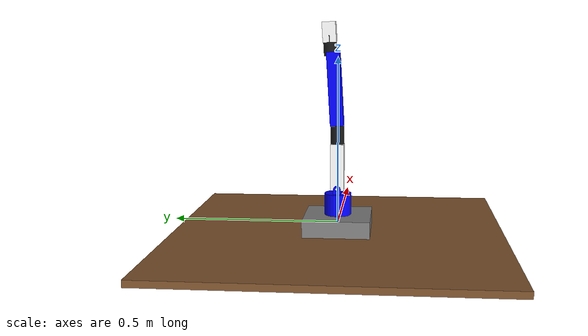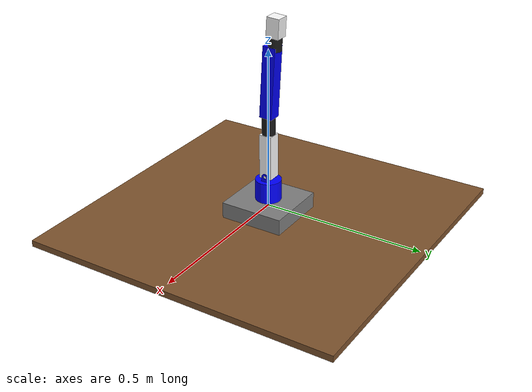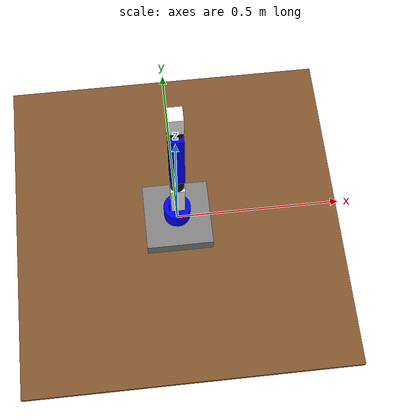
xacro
<?xml version="1.0"?>

<robot name="six_dof_arm" xmlns:xacro="http://www.ros.org/wiki/xacro">
<xacro:include filename="$(find six_dof_arm_description)/urdf/common_config.urdf.xacro"/>
<xacro:include filename="$(find six_dof_arm_description)/urdf/common_properties.urdf.xacro"/>
<xacro:include filename="$(find six_dof_arm_description)/urdf/six_dof_arm_gazebo.urdf.xacro"/>
<xacro:include filename="$(find six_dof_arm_description)/urdf/six_dof_arm_transmission.urdf.xacro"/>

<!-- BOTTOM FIXED LINK
This link is the base of the arm in which arm is placed -->

  <joint name="bottom_joint" type="fixed">
    <origin xyz="0 0 0" rpy="0 0 0" />
    <parent link="base_link"/>
    <child link="bottom_link"/>
  </joint>

  <link name="bottom_link">
    <visual>
      <origin xyz=" 0 0 -0.04"  rpy="0 0 0"/>
      <geometry>
        <box size="1 1 0.02" />
      </geometry>
      <material name="Brown" />
    </visual>

    <collision>
      <origin xyz=" 0 0 -0.04"  rpy="0 0 0"/>
      <geometry>
        <box size="1 1 0.02" />
      </geometry>
      </collision>>
  </link>

  <!-- BASE LINK -->
  <link name="base_link">

    <visual>
      <!-- rotate PI/2 -->
      <origin xyz="0 0 0" rpy="${M_PI/2} 0 0" />
      <geometry>
        <box size="0.2 0.05 0.2" />
      </geometry>
      <xacro:insert_block name="material_grey" />
    </visual>

    <collision>
      <!-- rotate PI/2 -->
      <origin xyz="0 0 0" rpy="${M_PI/2} 0 0" />
      <geometry>
        <box size="0.1 0.1 0.1" />
      </geometry>
      </collision>>
    <xacro:inertial_matrix mass="1"/>

  </link>

  <joint name="shoulder_pan_joint" type="revolute">
    <parent link="base_link"/>
    <child link="shoulder_pan_link"/>
    <origin xyz="0 0 0.05" rpy="0 ${M_PI/2} ${M_PI*0}" />
    <axis xyz="-1 0 0" />
    <limit effort="300" velocity="1" lower="-2.61799387799" upper="1.98394848567"/>
    <dynamics damping="50" friction="1"/>
  </joint>

  <!-- SHOULDER PAN LINK -->
  <link name="shoulder_pan_link" >

    <visual>
      <origin xyz="0 0 0" rpy="0 ${M_PI/2} 0" />
      <geometry>
        <cylinder radius="${shoulder_pan_width}" length="${shoulder_pan_len}"/>
      </geometry>
      <xacro:insert_block name="material_blue" />
    </visual>

    <collision>
      <origin xyz="0 0 0" rpy="0 ${M_PI/2} 0" />
      <geometry>
        <cylinder radius="${shoulder_pan_width}" length="${shoulder_pan_len}"/>
      </geometry>
    </collision>
    <xacro:inertial_matrix mass="1"/>
  </link>

  <joint name="shoulder_pitch_joint" type="fixed">
    <parent link="shoulder_pan_link"/>
    <child link="shoulder_pitch_mount_link"/>
    <origin xyz="${-shoulder_pan_len/3*2} 0.0021 0.0" rpy="-${M_PI} 0 0" />
  </joint>

  <link name="shoulder_pitch_mount_link">
    <visual>
      <origin xyz="0 0 0" rpy="-${M_PI/2} 0 0"/>
      <geometry>
        <mesh filename="package://six_dof_arm_description/meshes/wrist.stl"/>
      </geometry>
      <xacro:insert_block name="material_blue" />
    </visual>
    <collision>
      <origin xyz="0 0 0" rpy="-${M_PI/2} 0 0" />
      <geometry>
        <mesh filename="package://six_dof_arm_description/meshes/wrist.stl"/>
      </geometry>
    </collision>
    <xacro:inertial_matrix mass="1"/>
  </link>

  <joint name="shoulder_pitch_mount_joint" type="revolute">
    <parent link="shoulder_pitch_mount_link"/>
    <child link="shoulder_pitch_link"/>
    <origin xyz="-${shoulder_pan_len/3} 0.0 0.0" rpy="0 -${M_PI/2} 0 " />
    <axis xyz="1 0 0" />
    <limit effort="300" velocity="1" lower="-1.19962513147" upper="1.89994105047" />
    <dynamics damping="50" friction="1"/>
  </joint>

  <!-- SHOULDER PITCH LINK -->
  <link name="shoulder_pitch_link" >

    <visual>
      <origin xyz="-0.002 0 0.04" rpy="0 ${M_PI/2} 0" />
      <geometry>
        <box size="${shoulder_pitch_len} ${shoulder_pitch_width} ${shoulder_pitch_height}" />
      </geometry>
      <xacro:insert_block name="material_white" />
    </visual>

    <collision>
      <origin xyz="-0.002 0 0.04" rpy="0 ${M_PI/2} 0" />
      <geometry>
        <box size="${shoulder_pitch_len} ${shoulder_pitch_width} ${shoulder_pitch_height}" />
      </geometry>
    </collision>
    <xacro:inertial_matrix mass="1"/>
  </link>

  <joint name="elbow_roll_joint" type="revolute">
    <parent link="shoulder_pitch_link"/>
    <child link="elbow_roll_link"/>
    <origin xyz="-0.002 0 0.1206" rpy="${M_PI} ${M_PI/2} 0" />
    <axis xyz="-1 0 0" />
    <limit effort="300" velocity="1" lower="-2.61799387799" upper="0.705631162427" />
    <dynamics damping="50" friction="1"/>
  </joint>

  <!-- ELBOW ROLL LINK -->
  <link name="elbow_roll_link" >

    <visual>
      <origin xyz="-0.015 0.0 -0.0" rpy="0 ${M_PI/2} 0" />
      <geometry>
        <cylinder radius="${elbow_roll_width}" length="${elbow_roll_len}"/>
      </geometry>
      <xacro:insert_block name="material_black" />
    </visual>

    <collision>
      <origin xyz="-0.015 0.0 -0.0" rpy="0 ${M_PI/2} 0" />
      <geometry>
        <cylinder radius="${elbow_roll_width}" length="${elbow_roll_len}"/>
      </geometry>
    </collision>
    <xacro:inertial_matrix mass="1"/>
  </link>

  <joint name="elbow_pitch_joint" type="revolute">
    <parent link="elbow_roll_link"/>
    <child link="elbow_pitch_link"/>
    <origin xyz="-0.035 0 0.0" rpy="0.055 ${M_PI/2} 0" />
    <axis xyz="1 0 0" />
    <limit effort="300" velocity="1" lower="-1.5953400194" upper="1.93281579274" />
    <dynamics damping="50" friction="1"/>
  </joint>

  <!-- ELBOW PITCH LINK -->
  <link name="elbow_pitch_link" >

    <visual>
      <origin xyz="0 0 -0.12" rpy="0 ${M_PI/2} 0" />
      <geometry>
        <box size="${elbow_pitch_len} ${elbow_pitch_width} ${elbow_pitch_height}" />
      </geometry>
      <xacro:insert_block name="material_blue" />
    </visual>

    <collision>
      <origin xyz="0 0 -0.12" rpy="0 ${M_PI/2} 0" />
      <geometry>
       <box size="${elbow_pitch_len} ${elbow_pitch_width} ${elbow_pitch_height}" />
      </geometry>
    </collision>
    <xacro:inertial_matrix mass="1"/>
  </link>

  <joint name="wrist_roll_joint" type="revolute">
    <parent link="elbow_pitch_link"/>
    <child link="wrist_roll_link"/>
    <origin xyz="0.0 0.0081 -.248" rpy="0 ${M_PI/2} ${M_PI}" />
    <axis xyz="1 0 0" />
    <limit effort="300" velocity="1" lower="-2.61799387799" upper="2.6128806087" />
    <dynamics damping="50" friction="1"/>
  </joint>

  <!-- WRIST ROLL LINK -->
  <link name="wrist_roll_link" >
    <visual>
      <origin xyz="0 0 0" rpy="0 ${M_PI/2} 0" />
      <geometry>
        <cylinder radius="${elbow_roll_width}" length="${elbow_roll_len}"/>
      </geometry>
      <xacro:insert_block name="material_black" />
    </visual>

    <collision>
      <origin xyz="0 0 0" rpy="0 ${M_PI/2} 0" />
      <geometry>
        <cylinder radius="${elbow_roll_width}" length="${elbow_roll_len}"/>
      </geometry>
    </collision>
    <xacro:inertial_matrix mass="1"/>

  </link>

  <joint name="wrist_pitch_joint" type="revolute">
    <parent link="wrist_roll_link"/>
    <child link="wrist_pitch_link"/>
    <origin xyz="0.0 0.0 0.0001" rpy="0 ${M_PI/2} 0" />
    <axis xyz="1 0 0" />
    <limit effort="300" velocity="1" lower="-1.5953400194" upper="1.98394848567" />
    <dynamics damping="50" friction="1"/>
  </joint>

  <!-- WRIST PITCH LINK -->
  <link name="wrist_pitch_link">

    <visual>
      <origin xyz="0 0 0.04" rpy="0 ${M_PI/2} 0" />
      <geometry>
        <box size="${wrist_pitch_len} ${wrist_pitch_width} ${wrist_pitch_height}" />
      </geometry>
      <xacro:insert_block name="material_white" />
    </visual>

    <collision>
      <origin xyz="0 0 0.04 " rpy="0 ${M_PI/2} 0" />
      <geometry>
        <box size="${wrist_pitch_len} ${wrist_pitch_width} ${wrist_pitch_height}" />
      </geometry>
    </collision>
    <xacro:inertial_matrix mass="1"/>

  </link>

  <!-- Transmissions for ROS Control -->

  <xacro:transmission_block joint_name="shoulder_pan_joint"/>
  <xacro:transmission_block joint_name="shoulder_pitch_joint"/>
  <xacro:transmission_block joint_name="elbow_roll_joint"/>
  <xacro:transmission_block joint_name="elbow_pitch_joint"/>
  <xacro:transmission_block joint_name="wrist_roll_joint"/>
  <xacro:transmission_block joint_name="wrist_pitch_joint"/>

</robot>

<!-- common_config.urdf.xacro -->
<robot xmlns:xacro="http://www.ros.org/wiki/xacro">

  <property name="deg_to_rad" value="0.01745329251994329577"/>

  <!-- Constants -->
  <property name="M_SCALE" value="0.001 0.001 0.001"/>
  <property name="M_PI" value="3.14159"/>

  <!-- Shoulder pan link properties -->
  <property name="shoulder_pan_width" value="0.04" />
  <property name="shoulder_pan_len" value="0.08" />

  <!-- Shoulder pitch link properties -->
  <property name="shoulder_pitch_len" value="0.14" />
  <property name="shoulder_pitch_width" value="0.04" />
  <property name="shoulder_pitch_height" value="0.04" />

  <!-- Elbow roll link properties -->
  <property name="elbow_roll_width" value="0.02" />
  <property name="elbow_roll_len" value="0.06" />

  <!-- Elbow pitch link properties -->
  <property name="elbow_pitch_len" value="0.22" />
  <property name="elbow_pitch_width" value="0.04" />
  <property name="elbow_pitch_height" value="0.04" />

  <!-- Wrist roll link properties -->
  <property name="wrist_roll_width" value="0.02" />
  <property name="wrist_roll_len" value="0.04" />

  <!-- wrist pitch link properties -->
  <property name="wrist_pitch_len" value="0.06" />
  <property name="wrist_pitch_width" value="0.04" />
  <property name="wrist_pitch_height" value="0.04" />

  <!-- Gripper roll link properties -->
  <property name="gripper_roll_width" value="0.04" />
  <property name="gripper_roll_len" value="0.02" />

  <!-- Left gripper -->
  <property name="left_gripper_len" value="0.08" />
  <property name="left_gripper_width" value="0.01" />
  <property name="left_gripper_height" value="0.01" />

  <!-- Right gripper -->
  <property name="right_gripper_len" value="0.08" />
  <property name="right_gripper_width" value="0.01" />
  <property name="right_gripper_height" value="0.01" />

  <!-- Right gripper -->
  <property name="grasp_frame_len" value="0.02" />
  <property name="grasp_frame_width" value="0.02" />
  <property name="grasp_frame_height" value="0.02" />

</robot>

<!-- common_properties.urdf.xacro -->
<!--
  Various useful properties such as constants and materials
 -->
<robot name="xacro_properties" xmlns:xacro="http://www.ros.org/wiki/xacro">
  <xacro:property name="M_PI" value="3.1415926535897931" />
  <xacro:property name="material_white">
    <material name="white">
      <color rgba="1 1 1 1"/>
    </material>
  </xacro:property>
  <xacro:property name="material_grey">
    <material name="grey">
      <color rgba="0.5 0.5 0.5 1"/>
    </material>
  </xacro:property>
  <xacro:property name="material_light_grey">
    <material name="light_grey">
      <color rgba="0.6 0.6 0.6 1"/>
    </material>
  </xacro:property>
  <xacro:property name="material_dark_grey">
    <material name="dark_grey">
      <color rgba="0.3 0.3 0.3 1"/>
    </material>
  </xacro:property>
  <xacro:property name="material_black">
    <material name="black">
      <color rgba="0.1 0.1 0.1 1"/>
    </material>
  </xacro:property>
  <xacro:property name="material_dark_black">
    <material name="Black">
      <color rgba="0.0 0.0 0.0 1.0"/>
    </material>
  </xacro:property>
  <xacro:property name="material_red">
    <material name="red">
      <color rgba="1 0 0 1"/>
    </material>
  </xacro:property>
  <xacro:property name="material_white_red">
    <material name="Red">
      <color rgba="0.8 0.0 0.0 1.0"/>
    </material>
  </xacro:property>
  <xacro:property name="material_green">
    <material name="green">
      <color rgba="0.0 0.8 0.0 1"/>
    </material>
  </xacro:property>
  <xacro:property name="material_blue">
    <material name="blue">
      <color rgba="0.0 0.0 1.0 1"/>
    </material>
  </xacro:property>
  <xacro:property name="material_grey_blue">
    <material name="grey_blue">
      <color rgba="0.4 0.4 1.0 1"/>
    </material>
  </xacro:property>
  <xacro:property name="material_orange">
    <material name="orange">
      <color rgba="1.0 0.7 0.0 1"/>
    </material>
  </xacro:property>
</robot>

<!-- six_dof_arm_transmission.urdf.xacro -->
<robot name="six_dof_arm_transmission" xmlns:xacro="http://ros.org/wiki/xacro">

   <xacro:macro name="transmission_block" params="joint_name">
      <transmission name="tran1">
        <type>transmission_interface/SimpleTransmission</type>
        <joint name="${joint_name}">
          <hardwareInterface>PositionJointInterface</hardwareInterface>
        </joint>
        <actuator name="motor1">
          <hardwareInterface>PositionJointInterface</hardwareInterface>
          <mechanicalReduction>1</mechanicalReduction>
        </actuator>
      </transmission>
   </xacro:macro>

   <xacro:macro name="inertial_matrix" params="mass">
      <inertial>
          <mass value="${mass}" />
        <inertia ixx="1.0" ixy="0.0" ixz="0.0" iyy="0.5" iyz="0.0" izz="1.0" />
      </inertial>
   </xacro:macro>
</robot>
